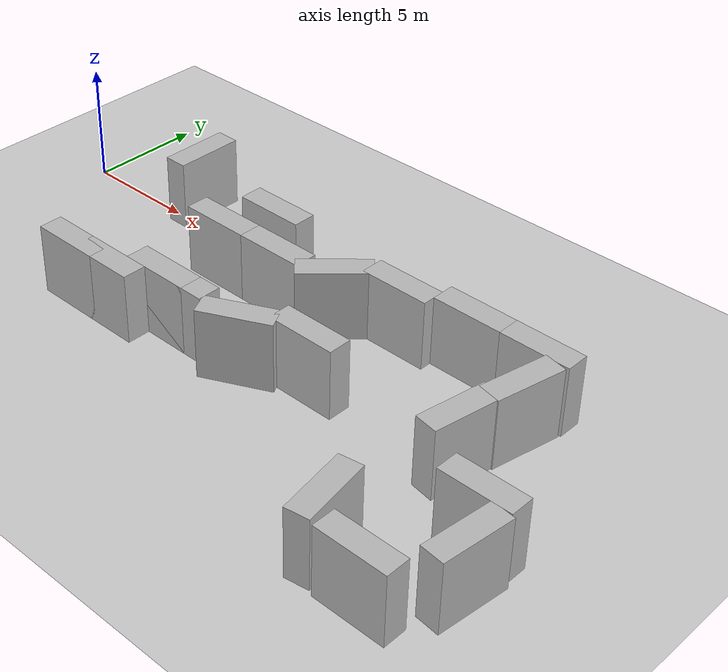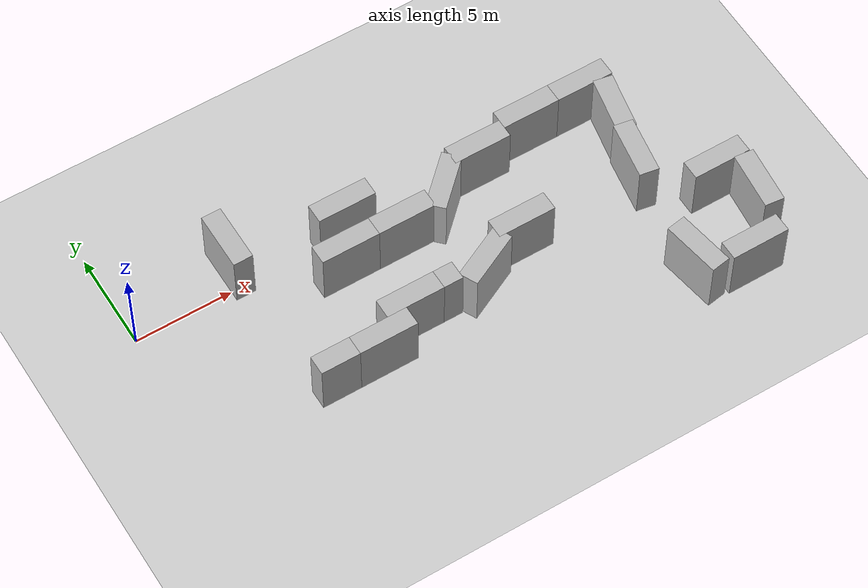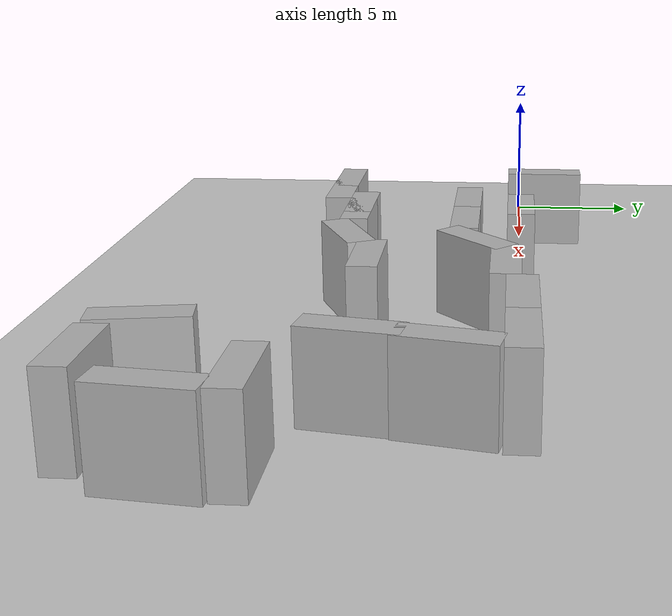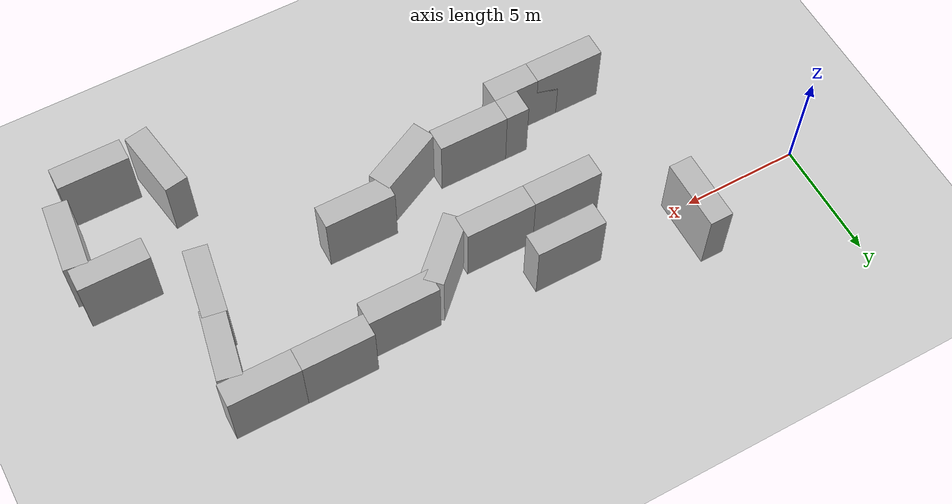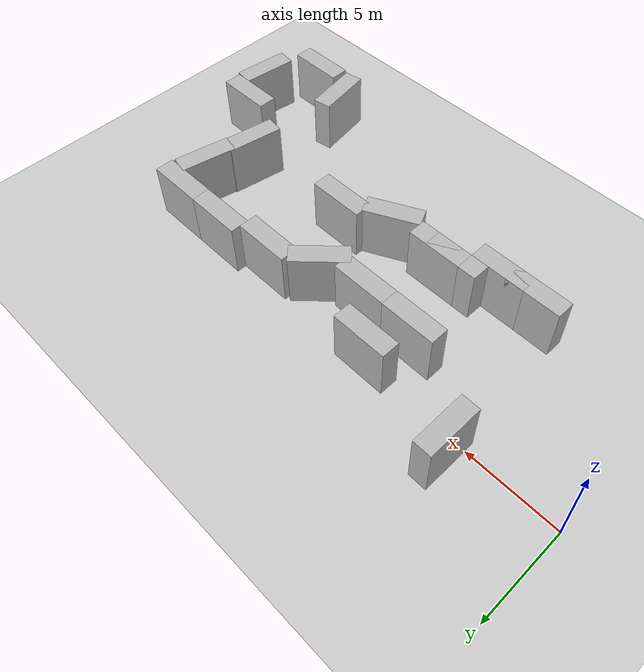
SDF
<sdf version="1.4">
 <world name="default">
  <model name="ground_plane">
   <static>1</static>
   <link name="link">
    <collision name="collision">
     <geometry><plane><normal>0 0 1</normal><size>100 100</size></plane></geometry>
     <surface><friction><ode><mu>100</mu><mu2>50</mu2></ode></friction></surface>
    </collision>
    <visual name="visual">
     <cast_shadows>0</cast_shadows>
     <geometry><plane><normal>0 0 1</normal><size>100 100</size></plane></geometry>
     <material>
      <script><uri>file://media/materials/scripts/gazebo.material</uri><name>Gazebo/Grey</name></script>
     </material>
    </visual>
    <velocity_decay><linear>0</linear><angular>0</angular></velocity_decay>
   </link>
  </model>
  <light name="sun" type="directional">
   <pose>0 0 10 0 -0 0</pose>
   <diffuse>0.8 0.8 0.8 1</diffuse>
   <specular>0.2 0.2 0.2 1</specular>
   <attenuation>
    <range>1000</range>
    <constant>0.9</constant>
    <linear>0.01</linear>
    <quadratic>0.001</quadratic>
   </attenuation>
   <direction>-0.5 0.1 -0.9</direction>
  </light>
  <model name="brick_box_3x1x3">
   <static>1</static>
   <link name="chassis">
    <pose>0 0 1.5 0 -0 0</pose>
    <collision name="collision"><geometry><box><size>3 1 3</size></box></geometry></collision>
    <visual name="visual">
     <geometry><mesh><uri>model://brick_box_3x1x3/meshes/simple_box.dae</uri><scale>3 1 3</scale></mesh></geometry>
     <material>
      <script>
       <uri>model://brick_box_3x1x3/materials/scripts</uri>
       <uri>model://brick_box_3x1x3/materials/textures</uri>
       <name>BrickBox/Diffuse</name>
      </script>
     </material>
    </visual>
    <velocity_decay><linear>0</linear><angular>0</angular></velocity_decay>
   </link>
   <pose>5.5 1 0 0 -0 1.57</pose>
  </model>
  <model name="brick_box_3x1x3">
   <static>1</static>
   <link name="chassis">
    <pose>0 0 1.5 0 -0 0</pose>
    <collision name="collision"><geometry><box><size>3 1 3</size></box></geometry></collision>
    <visual name="visual">
     <geometry><mesh><uri>model://brick_box_3x1x3/meshes/simple_box.dae</uri><scale>3 1 3</scale></mesh></geometry>
     <material>
      <script>
       <uri>model://brick_box_3x1x3/materials/scripts</uri>
       <uri>model://brick_box_3x1x3/materials/textures</uri>
       <name>BrickBox/Diffuse</name>
      </script>
     </material>
    </visual>
    <velocity_decay><linear>0</linear><angular>0</angular></velocity_decay>
   </link>
   <pose>5.5 1 0 0 -0 1.57</pose>
  </model>
  <model name="brick_box_3x1x3">
   <static>1</static>
   <link name="chassis">
    <pose>0 0 1.5 0 -0 0</pose>
    <collision name="collision"><geometry><box><size>3 1 3</size></box></geometry></collision>
    <visual name="visual">
     <geometry><mesh><uri>model://brick_box_3x1x3/meshes/simple_box.dae</uri><scale>3 1 3</scale></mesh></geometry>
     <material>
      <script>
       <uri>model://brick_box_3x1x3/materials/scripts</uri>
       <uri>model://brick_box_3x1x3/materials/textures</uri>
       <name>BrickBox/Diffuse</name>
      </script>
     </material>
    </visual>
    <velocity_decay><linear>0</linear><angular>0</angular></velocity_decay>
   </link>
   <pose>5.5 1 0 0 -0 1.57</pose>
  </model>
  <model name="brick_box_3x1x3">
   <static>1</static>
   <link name="chassis">
    <pose>0 0 1.5 0 -0 0</pose>
    <collision name="collision"><geometry><box><size>3 1 3</size></box></geometry></collision>
    <visual name="visual">
     <geometry><mesh><uri>model://brick_box_3x1x3/meshes/simple_box.dae</uri><scale>3 1 3</scale></mesh></geometry>
     <material>
      <script>
       <uri>model://brick_box_3x1x3/materials/scripts</uri>
       <uri>model://brick_box_3x1x3/materials/textures</uri>
       <name>BrickBox/Diffuse</name>
      </script>
     </material>
    </visual>
    <velocity_decay><linear>0</linear><angular>0</angular></velocity_decay>
   </link>
   <pose>5.5 1 0 0 -0 1.57</pose>
  </model>
  <plugin name="ros_interface_plugin" filename="librotors_gazebo_ros_interface_plugin.so"/>
  <spherical_coordinates>
   <surface_model>EARTH_WGS84</surface_model>
   <latitude_deg>47.3667</latitude_deg>
   <longitude_deg>8.55</longitude_deg>
   <elevation>500</elevation>
   <heading_deg>0</heading_deg>
  </spherical_coordinates>
  <physics type="ode">
   <ode>
    <solver><type>quick</type><iters>1000</iters><sor>1.3</sor></solver>
    <constraints>
     <cfm>0</cfm>
     <erp>0.2</erp>
     <contact_max_correcting_vel>100</contact_max_correcting_vel>
     <contact_surface_layer>0.001</contact_surface_layer>
    </constraints>
   </ode>
   <max_step_size>0.01</max_step_size>
   <real_time_factor>1</real_time_factor>
   <real_time_update_rate>100</real_time_update_rate>
   <gravity>0 0 -9.8</gravity>
  </physics>
  <scene><ambient>0.4 0.4 0.4 1</ambient><background>0.7 0.7 0.7 1</background><shadows>1</shadows></scene>
  <model name="brick_box_3x1x3_0">
   <static>1</static>
   <link name="chassis">
    <pose>0 0 1.5 0 -0 0</pose>
    <collision name="collision"><geometry><box><size>3 1 3</size></box></geometry></collision>
    <visual name="visual">
     <geometry><mesh><uri>model://brick_box_3x1x3/meshes/simple_box.dae</uri><scale>3 1 3</scale></mesh></geometry>
     <material>
      <script>
       <uri>model://brick_box_3x1x3/materials/scripts</uri>
       <uri>model://brick_box_3x1x3/materials/textures</uri>
       <name>BrickBox/Diffuse</name>
      </script>
     </material>
    </visual>
    <velocity_decay><linear>0</linear><angular>0</angular></velocity_decay>
   </link>
   <pose>11 0 0 0 -0 0</pose>
  </model>
  <model name="brick_box_3x1x3_1">
   <static>1</static>
   <link name="chassis">
    <pose>0 0 1.5 0 -0 0</pose>
    <collision name="collision"><geometry><box><size>3 1 3</size></box></geometry></collision>
    <visual name="visual">
     <geometry><mesh><uri>model://brick_box_3x1x3/meshes/simple_box.dae</uri><scale>3 1 3</scale></mesh></geometry>
     <material>
      <script>
       <uri>model://brick_box_3x1x3/materials/scripts</uri>
       <uri>model://brick_box_3x1x3/materials/textures</uri>
       <name>BrickBox/Diffuse</name>
      </script>
     </material>
    </visual>
    <velocity_decay><linear>0</linear><angular>0</angular></velocity_decay>
   </link>
   <pose>10 -2 0 0 -0 0</pose>
  </model>
  <model name="brick_box_3x1x3_2">
   <static>1</static>
   <link name="chassis">
    <pose>0 0 1.5 0 -0 0</pose>
    <collision name="collision"><geometry><box><size>3 1 3</size></box></geometry></collision>
    <visual name="visual">
     <geometry><mesh><uri>model://brick_box_3x1x3/meshes/simple_box.dae</uri><scale>3 1 3</scale></mesh></geometry>
     <material>
      <script>
       <uri>model://brick_box_3x1x3/materials/scripts</uri>
       <uri>model://brick_box_3x1x3/materials/textures</uri>
       <name>BrickBox/Diffuse</name>
      </script>
     </material>
    </visual>
    <velocity_decay><linear>0</linear><angular>0</angular></velocity_decay>
   </link>
   <pose>11 -6 0 0 -0 0</pose>
  </model>
  <model name="brick_box_3x1x3_3">
   <static>1</static>
   <link name="chassis">
    <pose>0 0 1.5 0 -0 0</pose>
    <collision name="collision"><geometry><box><size>3 1 3</size></box></geometry></collision>
    <visual name="visual">
     <geometry><mesh><uri>model://brick_box_3x1x3/meshes/simple_box.dae</uri><scale>3 1 3</scale></mesh></geometry>
     <material>
      <script>
       <uri>model://brick_box_3x1x3/materials/scripts</uri>
       <uri>model://brick_box_3x1x3/materials/textures</uri>
       <name>BrickBox/Diffuse</name>
      </script>
     </material>
    </visual>
    <velocity_decay><linear>0</linear><angular>0</angular></velocity_decay>
   </link>
   <pose>12 -6 0 0 -0 0</pose>
  </model>
  <model name="brick_box_3x1x3_4">
   <static>1</static>
   <link name="chassis">
    <pose>0 0 1.5 0 -0 0</pose>
    <collision name="collision"><geometry><box><size>3 1 3</size></box></geometry></collision>
    <visual name="visual">
     <geometry><mesh><uri>model://brick_box_3x1x3/meshes/simple_box.dae</uri><scale>3 1 3</scale></mesh></geometry>
     <material>
      <script>
       <uri>model://brick_box_3x1x3/materials/scripts</uri>
       <uri>model://brick_box_3x1x3/materials/textures</uri>
       <name>BrickBox/Diffuse</name>
      </script>
     </material>
    </visual>
    <velocity_decay><linear>0</linear><angular>0</angular></velocity_decay>
   </link>
   <pose>13 -2 0 0 -0 0</pose>
  </model>
  <model name="brick_box_3x1x3_5">
   <static>1</static>
   <link name="chassis">
    <pose>0 0 1.5 0 -0 0</pose>
    <collision name="collision"><geometry><box><size>3 1 3</size></box></geometry></collision>
    <visual name="visual">
     <geometry><mesh><uri>model://brick_box_3x1x3/meshes/simple_box.dae</uri><scale>3 1 3</scale></mesh></geometry>
     <material>
      <script>
       <uri>model://brick_box_3x1x3/materials/scripts</uri>
       <uri>model://brick_box_3x1x3/materials/textures</uri>
       <name>BrickBox/Diffuse</name>
      </script>
     </material>
    </visual>
    <velocity_decay><linear>0</linear><angular>0</angular></velocity_decay>
   </link>
   <pose>9 -7 0 0 -0 0</pose>
  </model>
  <model name="brick_box_3x1x3_6">
   <static>1</static>
   <link name="chassis">
    <pose>0 0 1.5 0 -0 0</pose>
    <collision name="collision"><geometry><box><size>3 1 3</size></box></geometry></collision>
    <visual name="visual">
     <geometry><mesh><uri>model://brick_box_3x1x3/meshes/simple_box.dae</uri><scale>3 1 3</scale></mesh></geometry>
     <material>
      <script>
       <uri>model://brick_box_3x1x3/materials/scripts</uri>
       <uri>model://brick_box_3x1x3/materials/textures</uri>
       <name>BrickBox/Diffuse</name>
      </script>
     </material>
    </visual>
    <velocity_decay><linear>0</linear><angular>0</angular></velocity_decay>
   </link>
   <pose>7 -7 0 0 -0 0</pose>
  </model>
  <model name="brick_box_3x1x3_7">
   <static>1</static>
   <link name="chassis">
    <pose>0 0 1.5 0 -0 0</pose>
    <collision name="collision"><geometry><box><size>3 1 3</size></box></geometry></collision>
    <visual name="visual">
     <geometry><mesh><uri>model://brick_box_3x1x3/meshes/simple_box.dae</uri><scale>3 1 3</scale></mesh></geometry>
     <material>
      <script>
       <uri>model://brick_box_3x1x3/materials/scripts</uri>
       <uri>model://brick_box_3x1x3/materials/textures</uri>
       <name>BrickBox/Diffuse</name>
      </script>
     </material>
    </visual>
    <velocity_decay><linear>0</linear><angular>0</angular></velocity_decay>
   </link>
   <pose>15.5438 -1.52574 0 0 -0 0.765964</pose>
  </model>
  <model name="brick_box_3x1x3_8">
   <static>1</static>
   <link name="chassis">
    <pose>0 0 1.5 0 -0 0</pose>
    <collision name="collision"><geometry><box><size>3 1 3</size></box></geometry></collision>
    <visual name="visual">
     <geometry><mesh><uri>model://brick_box_3x1x3/meshes/simple_box.dae</uri><scale>3 1 3</scale></mesh></geometry>
     <material>
      <script>
       <uri>model://brick_box_3x1x3/materials/scripts</uri>
       <uri>model://brick_box_3x1x3/materials/textures</uri>
       <name>BrickBox/Diffuse</name>
      </script>
     </material>
    </visual>
    <velocity_decay><linear>0</linear><angular>0</angular></velocity_decay>
   </link>
   <pose>15 -6 0 0 -0 0.457503</pose>
  </model>
  <model name="brick_box_3x1x3_9">
   <static>1</static>
   <link name="chassis">
    <pose>0 0 1.5 0 -0 0</pose>
    <collision name="collision"><geometry><box><size>3 1 3</size></box></geometry></collision>
    <visual name="visual">
     <geometry><mesh><uri>model://brick_box_3x1x3/meshes/simple_box.dae</uri><scale>3 1 3</scale></mesh></geometry>
     <material>
      <script>
       <uri>model://brick_box_3x1x3/materials/scripts</uri>
       <uri>model://brick_box_3x1x3/materials/textures</uri>
       <name>BrickBox/Diffuse</name>
      </script>
     </material>
    </visual>
    <velocity_decay><linear>0</linear><angular>0</angular></velocity_decay>
   </link>
   <pose>18 -0.509476 0 0 -0 0</pose>
  </model>
  <model name="brick_box_3x1x3_10">
   <static>1</static>
   <link name="chassis">
    <pose>0 0 1.5 0 -0 0</pose>
    <collision name="collision"><geometry><box><size>3 1 3</size></box></geometry></collision>
    <visual name="visual">
     <geometry><mesh><uri>model://brick_box_3x1x3/meshes/simple_box.dae</uri><scale>3 1 3</scale></mesh></geometry>
     <material>
      <script>
       <uri>model://brick_box_3x1x3/materials/scripts</uri>
       <uri>model://brick_box_3x1x3/materials/textures</uri>
       <name>BrickBox/Diffuse</name>
      </script>
     </material>
    </visual>
    <velocity_decay><linear>0</linear><angular>0</angular></velocity_decay>
   </link>
   <pose>17.5759 -5 0 0 -0 0</pose>
  </model>
  <model name="brick_box_3x1x3_11">
   <static>1</static>
   <link name="chassis">
    <pose>0 0 1.5 0 -0 0</pose>
    <collision name="collision"><geometry><box><size>3 1 3</size></box></geometry></collision>
    <visual name="visual">
     <geometry><mesh><uri>model://brick_box_3x1x3/meshes/simple_box.dae</uri><scale>3 1 3</scale></mesh></geometry>
     <material>
      <script>
       <uri>model://brick_box_3x1x3/materials/scripts</uri>
       <uri>model://brick_box_3x1x3/materials/textures</uri>
       <name>BrickBox/Diffuse</name>
      </script>
     </material>
    </visual>
    <velocity_decay><linear>0</linear><angular>0</angular></velocity_decay>
   </link>
   <pose>24.6541 -1.97749 0 0 -0 1.37346</pose>
  </model>
  <model name="brick_box_3x1x3_12">
   <static>1</static>
   <link name="chassis">
    <pose>0 0 1.5 0 -0 0</pose>
    <collision name="collision"><geometry><box><size>3 1 3</size></box></geometry></collision>
    <visual name="visual">
     <geometry><mesh><uri>model://brick_box_3x1x3/meshes/simple_box.dae</uri><scale>3 1 3</scale></mesh></geometry>
     <material>
      <script>
       <uri>model://brick_box_3x1x3/materials/scripts</uri>
       <uri>model://brick_box_3x1x3/materials/textures</uri>
       <name>BrickBox/Diffuse</name>
      </script>
     </material>
    </visual>
    <velocity_decay><linear>0</linear><angular>0</angular></velocity_decay>
   </link>
   <pose>23.5745 -10.5376 0 0 -0 1.73247</pose>
  </model>
  <model name="brick_box_3x1x3_13">
   <static>1</static>
   <link name="chassis">
    <pose>0 0 1.5 0 -0 0</pose>
    <collision name="collision"><geometry><box><size>3 1 3</size></box></geometry></collision>
    <visual name="visual">
     <geometry><mesh><uri>model://brick_box_3x1x3/meshes/simple_box.dae</uri><scale>3 1 3</scale></mesh></geometry>
     <material>
      <script>
       <uri>model://brick_box_3x1x3/materials/scripts</uri>
       <uri>model://brick_box_3x1x3/materials/textures</uri>
       <name>BrickBox/Diffuse</name>
      </script>
     </material>
    </visual>
    <velocity_decay><linear>0</linear><angular>0</angular></velocity_decay>
   </link>
   <pose>24.1103 -4.62373 0 0 -0 1.40648</pose>
  </model>
  <model name="brick_box_3x1x3_14">
   <static>1</static>
   <link name="chassis">
    <pose>0 0 1.5 0 -0 0</pose>
    <collision name="collision"><geometry><box><size>3 1 3</size></box></geometry></collision>
    <visual name="visual">
     <geometry><mesh><uri>model://brick_box_3x1x3/meshes/simple_box.dae</uri><scale>3 1 3</scale></mesh></geometry>
     <material>
      <script>
       <uri>model://brick_box_3x1x3/materials/scripts</uri>
       <uri>model://brick_box_3x1x3/materials/textures</uri>
       <name>BrickBox/Diffuse</name>
      </script>
     </material>
    </visual>
    <velocity_decay><linear>0</linear><angular>0</angular></velocity_decay>
   </link>
   <pose>28 -9 0 0 -0 1.46354</pose>
  </model>
  <model name="brick_box_3x1x3_15">
   <static>1</static>
   <link name="chassis">
    <pose>0 0 1.5 0 -0 0</pose>
    <collision name="collision"><geometry><box><size>3 1 3</size></box></geometry></collision>
    <visual name="visual">
     <geometry><mesh><uri>model://brick_box_3x1x3/meshes/simple_box.dae</uri><scale>3 1 3</scale></mesh></geometry>
     <material>
      <script>
       <uri>model://brick_box_3x1x3/materials/scripts</uri>
       <uri>model://brick_box_3x1x3/materials/textures</uri>
       <name>BrickBox/Diffuse</name>
      </script>
     </material>
    </visual>
    <velocity_decay><linear>0</linear><angular>0</angular></velocity_decay>
   </link>
   <pose>21 0 0 0 -0 0</pose>
  </model>
  <model name="brick_box_3x1x3_16">
   <static>1</static>
   <link name="chassis">
    <pose>0 0 1.5 0 -0 0</pose>
    <collision name="collision"><geometry><box><size>3 1 3</size></box></geometry></collision>
    <visual name="visual">
     <geometry><mesh><uri>model://brick_box_3x1x3/meshes/simple_box.dae</uri><scale>3 1 3</scale></mesh></geometry>
     <material>
      <script>
       <uri>model://brick_box_3x1x3/materials/scripts</uri>
       <uri>model://brick_box_3x1x3/materials/textures</uri>
       <name>BrickBox/Diffuse</name>
      </script>
     </material>
    </visual>
    <velocity_decay><linear>0</linear><angular>0</angular></velocity_decay>
   </link>
   <pose>24 0 0 0 -0 0</pose>
  </model>
  <model name="brick_box_3x1x3_17">
   <static>1</static>
   <link name="chassis">
    <pose>0 0 1.5 0 -0 0</pose>
    <collision name="collision"><geometry><box><size>3 1 3</size></box></geometry></collision>
    <visual name="visual">
     <geometry><mesh><uri>model://brick_box_3x1x3/meshes/simple_box.dae</uri><scale>3 1 3</scale></mesh></geometry>
     <material>
      <script>
       <uri>model://brick_box_3x1x3/materials/scripts</uri>
       <uri>model://brick_box_3x1x3/materials/textures</uri>
       <name>BrickBox/Diffuse</name>
      </script>
     </material>
    </visual>
    <velocity_decay><linear>0</linear><angular>0</angular></velocity_decay>
   </link>
   <pose>26 -11.5555 0 0 -0 0</pose>
  </model>
  <model name="brick_box_3x1x3_18">
   <static>1</static>
   <link name="chassis">
    <pose>0 0 1.5 0 -0 0</pose>
    <collision name="collision"><geometry><box><size>3 1 3</size></box></geometry></collision>
    <visual name="visual">
     <geometry><mesh><uri>model://brick_box_3x1x3/meshes/simple_box.dae</uri><scale>3 1 3</scale></mesh></geometry>
     <material>
      <script>
       <uri>model://brick_box_3x1x3/materials/scripts</uri>
       <uri>model://brick_box_3x1x3/materials/textures</uri>
       <name>BrickBox/Diffuse</name>
      </script>
     </material>
    </visual>
    <velocity_decay><linear>0</linear><angular>0</angular></velocity_decay>
   </link>
   <pose>27 -7 0 0 -0 0</pose>
  </model>
 </world>
</sdf>
